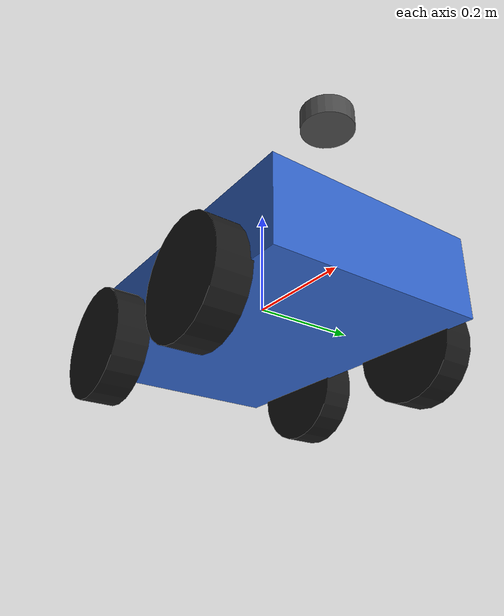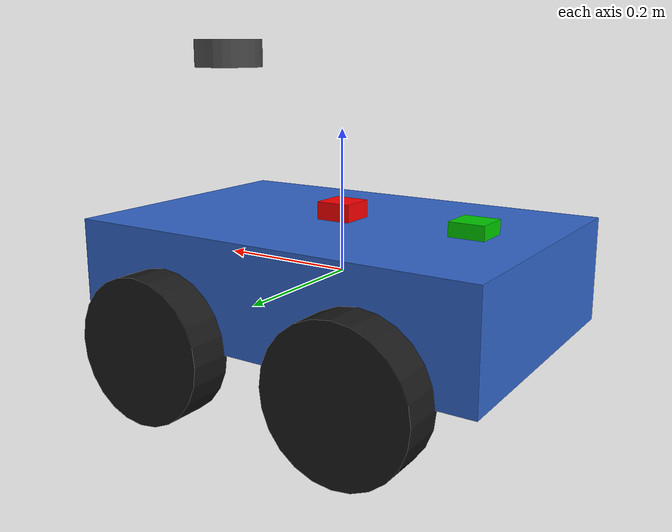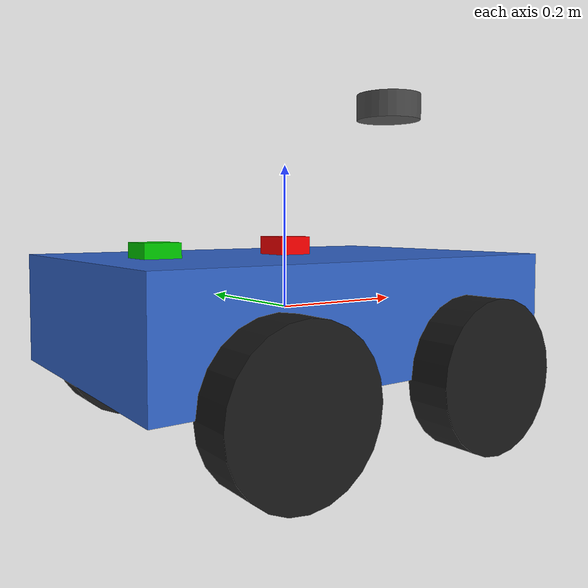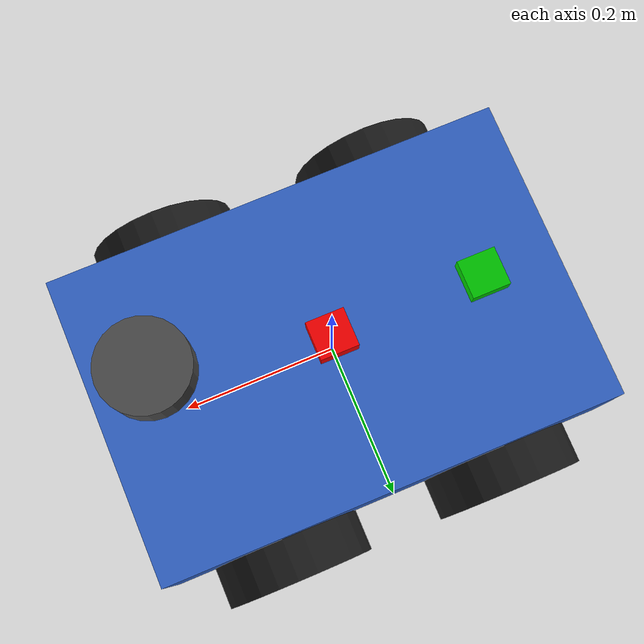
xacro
<?xml version="1.0"?>
<robot name="small_diff_drive_car" xmlns:xacro="http://www.ros.org/wiki/xacro">

  <xacro:property name="base_length" value="0.6" />
  <xacro:property name="base_width" value="0.4" />
  <xacro:property name="base_height" value="0.15" />
  <xacro:property name="wheel_radius" value="0.1" />
  <xacro:property name="wheel_width" value="0.06" />
  <xacro:property name="wheel_separation_w" value="${base_width + 0.05}" />
  <xacro:property name="wheel_separation_l" value="${base_length / 2}" />
  <xacro:property name="base_mass" value="10.0" />
  <xacro:property name="wheel_mass" value="1.0" />

  <link name="base_link">
    <visual>
      <origin xyz="0 0 0" rpy="0 0 0"/>
      <geometry>
        <box size="${base_length} ${base_width} ${base_height}"/>
      </geometry>
      <material name="blue">
        <color rgba="0.2 0.4 0.8 1.0"/>
      </material>
    </visual>
    <collision>
      <origin xyz="0 0 0" rpy="0 0 0"/>
      <geometry>
        <box size="${base_length} ${base_width} ${base_height}"/>
      </geometry>
    </collision>
    <inertial>
      <mass value="${base_mass}"/>
      <inertia ixx="${(1/12) * base_mass * (base_width*base_width + base_height*base_height)}" ixy="0.0" ixz="0.0"
               iyy="${(1/12) * base_mass * (base_length*base_length + base_height*base_height)}" iyz="0.0"
               izz="${(1/12) * base_mass * (base_length*base_length + base_width*base_width)}"/>
    </inertial>
  </link>

  <link name="base_footprint"/>

  <joint name="base_footprint_joint" type="fixed">
    <parent link="base_link"/>
    <child link="base_footprint"/>
    <origin xyz="0 0 ${-base_height/2 - wheel_radius}" rpy="0 0 0"/>
  </joint>

  <xacro:macro name="wheel" params="prefix side reflect">
    <link name="${prefix}_${side}_wheel_link">
      <visual>
        <origin xyz="0 0 0" rpy="${pi/2} 0 0"/>
        <geometry>
          <cylinder radius="${wheel_radius}" length="${wheel_width}"/>
        </geometry>
        <material name="black">
          <color rgba="0.1 0.1 0.1 1.0"/>
        </material>
      </visual>
      <collision>
        <origin xyz="0 0 0" rpy="${pi/2} 0 0"/>
        <geometry>
          <cylinder radius="${wheel_radius}" length="${wheel_width}"/>
        </geometry>
      </collision>
      <inertial>
        <mass value="${wheel_mass}"/>
        <inertia ixx="${(1/12) * wheel_mass * (3*wheel_radius*wheel_radius + wheel_width*wheel_width)}" ixy="0.0" ixz="0.0"
                 iyy="${(1/2) * wheel_mass * (wheel_radius*wheel_radius)}" iyz="0.0"
                 izz="${(1/12) * wheel_mass * (3*wheel_radius*wheel_radius + wheel_width*wheel_width)}"/>
      </inertial>
    </link>

    <joint name="${prefix}_${side}_wheel_joint" type="continuous">
      <parent link="base_link"/>
      <child link="${prefix}_${side}_wheel_link"/>
      <origin xyz="${prefix == 'front' and wheel_separation_l/2 or -wheel_separation_l/2} ${reflect * wheel_separation_w/2} ${-base_height/2}" rpy="0 0 0"/>
      <axis xyz="0 1 0"/>
    </joint>
  </xacro:macro>

  <xacro:wheel prefix="front" side="left" reflect="1"/>
  <xacro:wheel prefix="front" side="right" reflect="-1"/>
  <xacro:wheel prefix="rear" side="left" reflect="1"/>
  <xacro:wheel prefix="rear" side="right" reflect="-1"/>

  <gazebo reference="base_link">
    <material>Gazebo/Blue</material>
  </gazebo>
  <gazebo reference="front_left_wheel_link">
    <material>Gazebo/Black</material>
    <mu1>0.8</mu1>
    <mu2>0.8</mu2>
  </gazebo>
  <gazebo reference="front_right_wheel_link">
    <material>Gazebo/Black</material>
    <mu1>0.8</mu1>
    <mu2>0.8</mu2>
  </gazebo>
  <gazebo reference="rear_left_wheel_link">
    <material>Gazebo/Black</material>
    <mu1>0.8</mu1>
    <mu2>0.8</mu2>
  </gazebo>
  <gazebo reference="rear_right_wheel_link">
    <material>Gazebo/Black</material>
    <mu1>0.8</mu1>
    <mu2>0.8</mu2>
  </gazebo>

  <link name="imu_link">
    <inertial>
      <mass value="0.01"/>
      <origin xyz="0 0 0" rpy="0 0 0"/>
      <inertia ixx="1e-6" ixy="0" ixz="0" iyy="1e-6" iyz="0" izz="1e-6"/>
    </inertial>
    <visual>
      <origin xyz="0 0 0" rpy="0 0 0"/>
      <geometry>
        <box size="0.05 0.05 0.05"/>
      </geometry>
      <material name="red">
        <color rgba="1.0 0.0 0.0 1.0"/>
      </material>
    </visual>
    <collision>
      <origin xyz="0 0 0" rpy="0 0 0"/>
      <geometry>
        <box size="0.05 0.05 0.05"/>
      </geometry>
    </collision>
  </link>

  <joint name="imu_joint" type="fixed">
    <parent link="base_link"/>
    <child link="imu_link"/>
    <origin xyz="0 0 ${base_height/2}" rpy="0 0 0"/>
  </joint>

  <gazebo reference="imu_link">
    <material>Gazebo/Red</material>
    <sensor type="imu" name="imu_sensor">
      <always_on>true</always_on>
      <update_rate>500</update_rate> <imu>
        <angular_velocity>
          <x>
            <noise type="gaussian">
              <mean>0.0</mean>
              <stddev>2e-4</stddev>
            </noise>
          </x>
          <y>
            <noise type="gaussian">
              <mean>0.0</mean>
              <stddev>2e-4</stddev>
            </noise>
          </y>
          <z>
            <noise type="gaussian">
              <mean>0.0</mean>
              <stddev>2e-4</stddev>
            </noise>
          </z>
        </angular_velocity>
        <linear_acceleration>
          <x>
            <noise type="gaussian">
              <mean>0.0</mean>
              <stddev>1.7e-2</stddev>
            </noise>
          </x>
          <y>
            <noise type="gaussian">
              <mean>0.0</mean>
              <stddev>1.7e-2</stddev>
            </noise>
          </y>
          <z>
            <noise type="gaussian">
              <mean>0.0</mean>
              <stddev>1.7e-2</stddev>
            </noise>
          </z>
        </linear_acceleration>
      </imu>
      <plugin name="imu_plugin" filename="libgazebo_ros_imu_sensor.so">
        <ros>
            <namespace>/imu</namespace>
            <remapping>~/out:=data</remapping>
        </ros>
        <frame_name>imu_link</frame_name>
      </plugin>
    </sensor>
  </gazebo>

  <link name="lidar_link">
    <inertial>
      <mass value="0.1"/>
      <origin xyz="0 0 0" rpy="0 0 0"/>
      <inertia ixx="1e-6" ixy="0" ixz="0" iyy="1e-6" iyz="0" izz="1e-6"/>
    </inertial>
    <visual>
      <origin xyz="0 0 0" rpy="0 0 0"/>
      <geometry>
        <cylinder radius="0.05" length="0.04"/>
      </geometry>
      <material name="grey">
        <color rgba="0.3 0.3 0.3 1.0"/>
      </material>
    </visual>
    <collision>
      <origin xyz="0 0 0" rpy="0 0 0"/>
      <geometry>
        <cylinder radius="0.05" length="0.04"/>
      </geometry>
    </collision>
  </link>

  <joint name="lidar_joint" type="fixed">
    <parent link="base_link"/>
    <child link="lidar_link"/>
    <origin xyz="${base_length/2 - 0.1} 0 0.3" rpy="0 0 0"/>
  </joint>

  <gazebo reference="lidar_link">
    <material>Gazebo/Grey</material>
    <sensor type="ray" name="velodyne_vlp16">
      <pose>0 0 0 0 0 0</pose>
      <visualize>false</visualize>
      <update_rate>10</update_rate>
      <ray>
        <scan>
          <horizontal>
            <samples>1800</samples>
            <resolution>1</resolution>
            <min_angle>-3.14159265</min_angle>
            <max_angle>3.14159265</max_angle>
          </horizontal>
          <vertical>
            <samples>16</samples>
            <resolution>1</resolution>
            <min_angle>-0.261799</min_angle>
            <max_angle>0.261799</max_angle>
          </vertical>
        </scan>
        <range>
          <min>0.1</min>
          <max>130.0</max>
          <resolution>0.01</resolution>
        </range>
        <noise>
          <type>gaussian</type>
          <mean>0.0</mean>
          <stddev>0.01</stddev>
        </noise>
      </ray>
    <plugin name="gazebo_ros_velodyne_laser" filename="libgazebo_ros_velodyne_laser.so">
        <topicName>/velodyne</topicName>
        <frameName>lidar_link</frameName>
        <organize_cloud>true</organize_cloud>
        <min_range>0.9</min_range>
        <max_range>130.0</max_range>
        <gaussianNoise>0.008</gaussianNoise>
    </plugin>
    </sensor>
  </gazebo>

  <link name="gnss_link">
    <visual>
      <geometry>
        <box size="0.05 0.05 0.02"/>
      </geometry>
      <material name="green">
        <color rgba="0.0 0.8 0.0 1.0"/>
      </material>
    </visual>
    <collision>
      <geometry>
        <box size="0.05 0.05 0.02"/>
      </geometry>
    </collision>
     <inertial>
      <mass value="0.01"/>
      <inertia ixx="1e-6" ixy="0" ixz="0" iyy="1e-6" iyz="0" izz="1e-6"/>
    </inertial>
  </link>

  <joint name="gnss_joint" type="fixed">
    <parent link="base_link"/>
    <child link="gnss_link"/>
    <origin xyz="${-base_length/2 + 0.1} 0 ${base_height/2 + 0.01}" rpy="0 0 0"/>
  </joint>

  <gazebo reference="gnss_link">
    <material>Gazebo/Green</material>
    <sensor type="gps" name="gps_sensor">
      <always_on>true</always_on>
      <update_rate>5.0</update_rate>
      <plugin name="gnss_plugin" filename="libgazebo_ros_gps_sensor.so">
        <ros>
            <namespace>/gnss</namespace>
            <remapping>~/out:=data</remapping>
        </ros>
        <frame_name>gnss_link</frame_name>
      </plugin>
    </sensor>
  </gazebo>

    <gazebo>
        <plugin name="mecanum_controller" filename="libgazebo_ros_planar_move.so">
            <ros>
                <remapping>cmd_vel:=cmd_vel</remapping>
                <remapping>odom:=odom</remapping>
            </ros>

            <update_rate>100</update_rate>
            <publish_rate>100</publish_rate>

            <publish_odom>false</publish_odom>
            <publish_odom_tf>false</publish_odom_tf>

            <leftFrontJoint>front_left_wheel_joint</leftFrontJoint>
            <rightFrontJoint>front_right_wheel_joint</rightFrontJoint>
            <leftRearJoint>rear_left_wheel_joint</leftRearJoint>
            <rightRearJoint>rear_right_wheel_joint</rightRearJoint>
            <wheelSeparation>0.45</wheelSeparation>
            <wheelDiameter>0.2</wheelDiameter>
        </plugin>
    </gazebo>

</robot>
